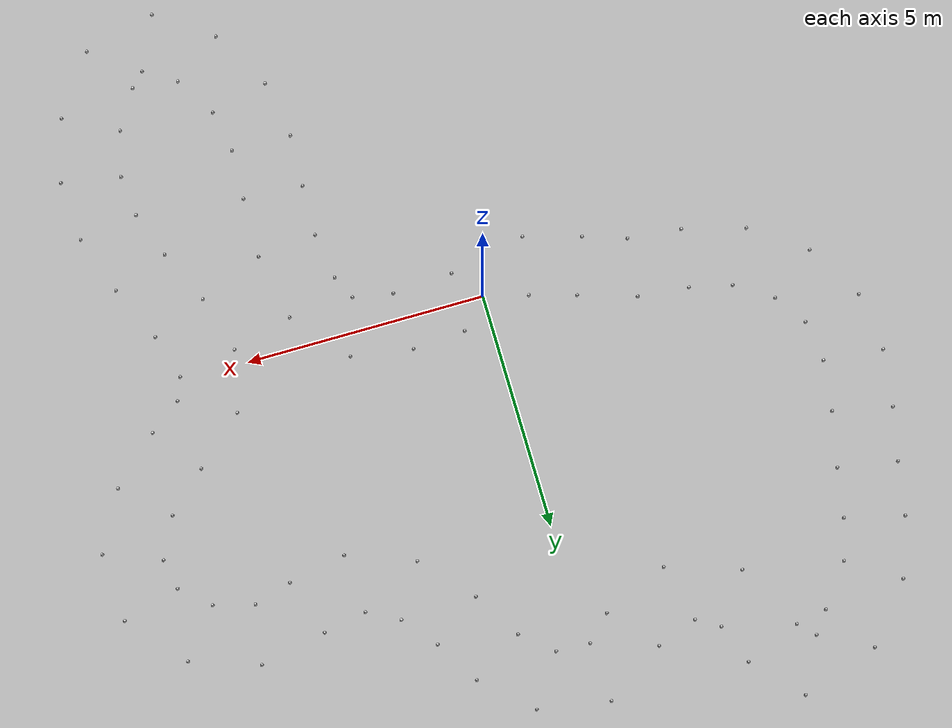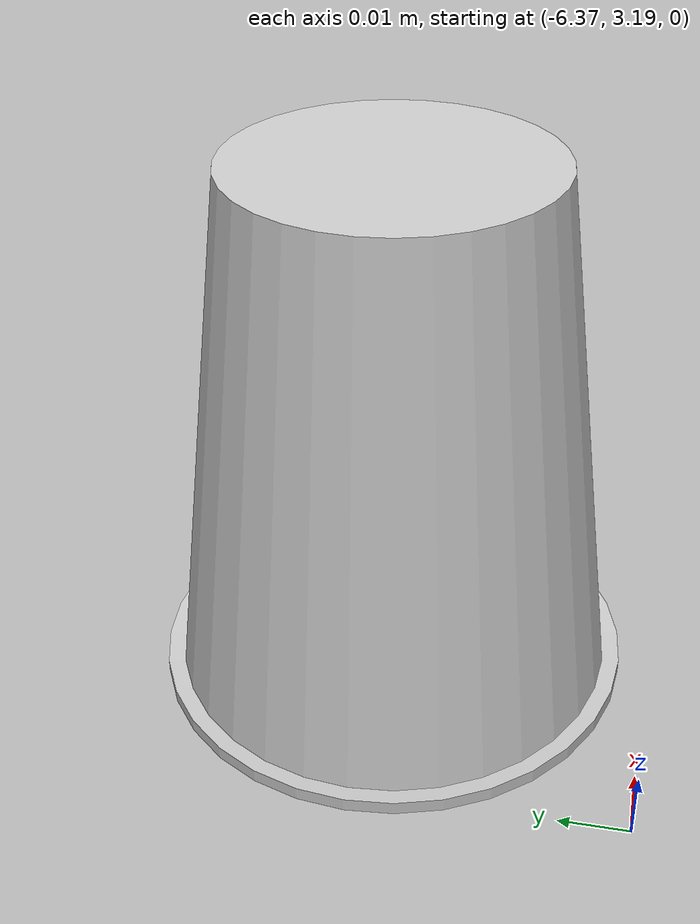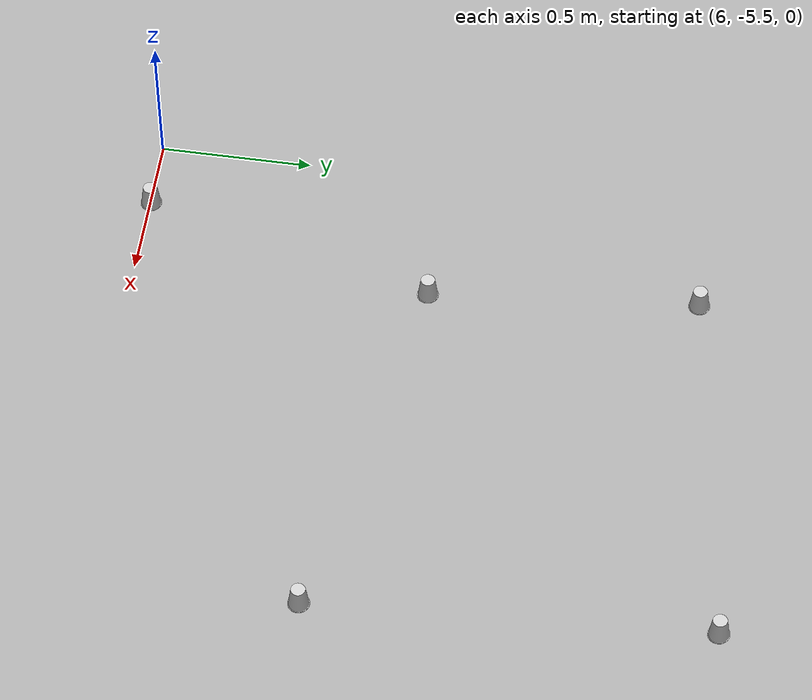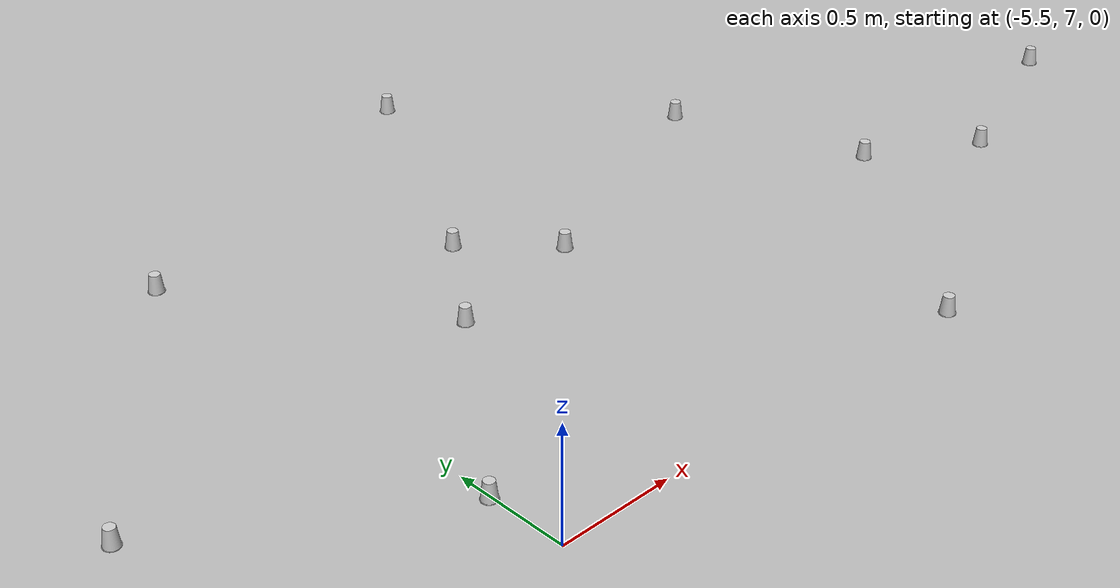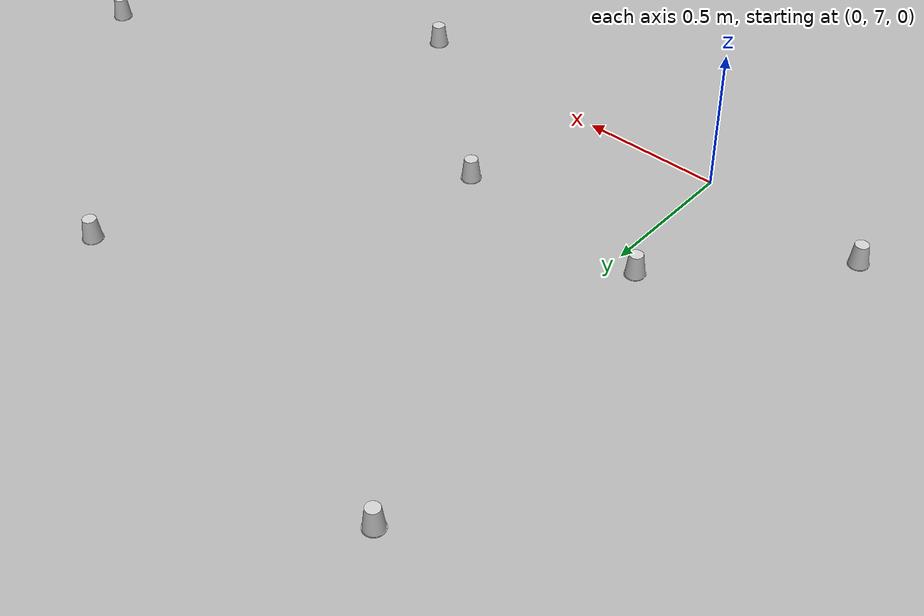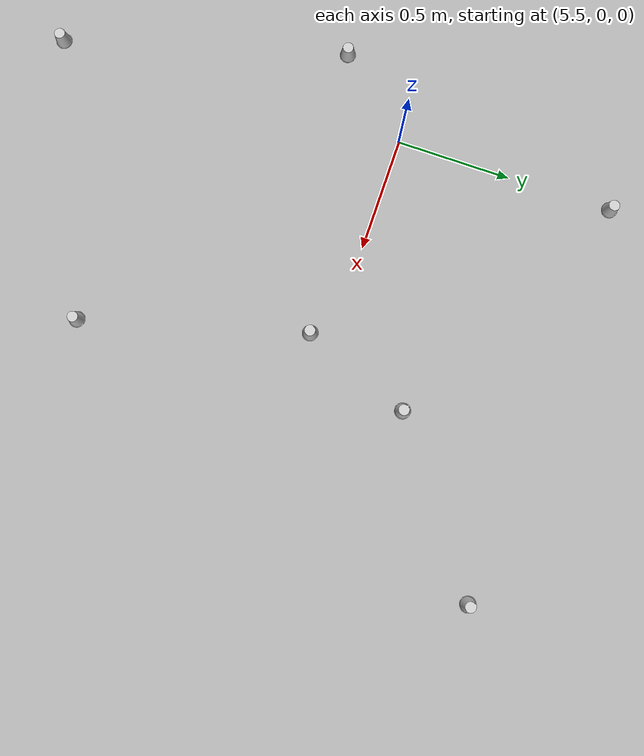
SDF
<?xml version='1.0' encoding='UTF-8'?>
<sdf version="1.4">
  <model name="some track">
    <include>
      <uri>model://cone_yellow</uri>
      <pose>0.47546932451259105 -0.6562320953575351 0 0 0 0</pose>
      <name>cone_right_0</name>
    </include>
    <include>
      <uri>model://cone_yellow</uri>
      <pose>1.7425809693762848 -0.5812231808427788 0 0 0 0</pose>
      <name>cone_right_1</name>
    </include>
    <include>
      <uri>model://cone_yellow</uri>
      <pose>2.573097788055316 -0.7332586588139313 0 0 0 0</pose>
      <name>cone_right_2</name>
    </include>
    <include>
      <uri>model://cone_yellow</uri>
      <pose>2.810277331413577 -1.2395198425914522 0 0 0 0</pose>
      <name>cone_right_3</name>
    </include>
    <include>
      <uri>model://cone_yellow</uri>
      <pose>2.9522544970300055 -2.224082742634391 0 0 0 0</pose>
      <name>cone_right_4</name>
    </include>
    <include>
      <uri>model://cone_yellow</uri>
      <pose>2.9181623258554215 -3.306340441878332 0 0 0 0</pose>
      <name>cone_right_5</name>
    </include>
    <include>
      <uri>model://cone_yellow</uri>
      <pose>2.8697493444088207 -4.41824403034643 0 0 0 0</pose>
      <name>cone_right_6</name>
    </include>
    <include>
      <uri>model://cone_yellow</uri>
      <pose>3.0717281529207394 -5.6498263763816325 0 0 0 0</pose>
      <name>cone_right_7</name>
    </include>
    <include>
      <uri>model://cone_yellow</uri>
      <pose>3.782968901965407 -6.9161935792673725 0 0 0 0</pose>
      <name>cone_right_8</name>
    </include>
    <include>
      <uri>model://cone_yellow</uri>
      <pose>4.939803433769702 -7.745260667724783 0 0 0 0</pose>
      <name>cone_right_9</name>
    </include>
    <include>
      <uri>model://cone_yellow</uri>
      <pose>6.4540149766492485 -7.343816571935378 0 0 0 0</pose>
      <name>cone_right_10</name>
    </include>
    <include>
      <uri>model://cone_yellow</uri>
      <pose>7.3334630684444395 -6.085893925879358 0 0 0 0</pose>
      <name>cone_right_11</name>
    </include>
    <include>
      <uri>model://cone_yellow</uri>
      <pose>7.704284107713281 -4.75416540795752 0 0 0 0</pose>
      <name>cone_right_12</name>
    </include>
    <include>
      <uri>model://cone_yellow</uri>
      <pose>7.6257219702040056 -3.4649518098178693 0 0 0 0</pose>
      <name>cone_right_13</name>
    </include>
    <include>
      <uri>model://cone_yellow</uri>
      <pose>7.20519613078481 -2.2201196186430625 0 0 0 0</pose>
      <name>cone_right_14</name>
    </include>
    <include>
      <uri>model://cone_yellow</uri>
      <pose>6.686262895013817 -1.0471856416397323 0 0 0 0</pose>
      <name>cone_right_15</name>
    </include>
    <include>
      <uri>model://cone_yellow</uri>
      <pose>6.419573909099897 -0.0911819390319567 0 0 0 0</pose>
      <name>cone_right_16</name>
    </include>
    <include>
      <uri>model://cone_yellow</uri>
      <pose>6.605243391624034 0.38325052655555086 0 0 0 0</pose>
      <name>cone_right_17</name>
    </include>
    <include>
      <uri>model://cone_yellow</uri>
      <pose>7.266788620003716 0.8833295691007101 0 0 0 0</pose>
      <name>cone_right_18</name>
    </include>
    <include>
      <uri>model://cone_yellow</uri>
      <pose>8.248285999465562 1.8072870962549066 0 0 0 0</pose>
      <name>cone_right_19</name>
    </include>
    <include>
      <uri>model://cone_yellow</uri>
      <pose>8.913002342074702 3.042107124074161 0 0 0 0</pose>
      <name>cone_right_20</name>
    </include>
    <include>
      <uri>model://cone_yellow</uri>
      <pose>8.831948679769845 4.488264096448706 0 0 0 0</pose>
      <name>cone_right_21</name>
    </include>
    <include>
      <uri>model://cone_yellow</uri>
      <pose>7.819907315784447 5.642764585635655 0 0 0 0</pose>
      <name>cone_right_22</name>
    </include>
    <include>
      <uri>model://cone_yellow</uri>
      <pose>6.405035016280444 6.123214657847137 0 0 0 0</pose>
      <name>cone_right_23</name>
    </include>
    <include>
      <uri>model://cone_yellow</uri>
      <pose>5.010399742955544 5.837614493796552 0 0 0 0</pose>
      <name>cone_right_24</name>
    </include>
    <include>
      <uri>model://cone_yellow</uri>
      <pose>4.108166114373763 5.66263066831719 0 0 0 0</pose>
      <name>cone_right_25</name>
    </include>
    <include>
      <uri>model://cone_yellow</uri>
      <pose>3.4510734130239173 6.01804205015614 0 0 0 0</pose>
      <name>cone_right_26</name>
    </include>
    <include>
      <uri>model://cone_yellow</uri>
      <pose>2.8805076473569486 6.709087899751246 0 0 0 0</pose>
      <name>cone_right_27</name>
    </include>
    <include>
      <uri>model://cone_yellow</uri>
      <pose>2.3246814066766284 7.62317966623981 0 0 0 0</pose>
      <name>cone_right_28</name>
    </include>
    <include>
      <uri>model://cone_yellow</uri>
      <pose>1.3303139419341758 8.536196790596623 0 0 0 0</pose>
      <name>cone_right_29</name>
    </include>
    <include>
      <uri>model://cone_yellow</uri>
      <pose>-0.16341045099972956 8.783814273237542 0 0 0 0</pose>
      <name>cone_right_30</name>
    </include>
    <include>
      <uri>model://cone_yellow</uri>
      <pose>-1.4091465383596269 7.976636862464822 0 0 0 0</pose>
      <name>cone_right_31</name>
    </include>
    <include>
      <uri>model://cone_yellow</uri>
      <pose>-2.2553711862273906 7.6620972654793045 0 0 0 0</pose>
      <name>cone_right_32</name>
    </include>
    <include>
      <uri>model://cone_yellow</uri>
      <pose>-2.726978289723062 7.947885823625147 0 0 0 0</pose>
      <name>cone_right_33</name>
    </include>
    <include>
      <uri>model://cone_yellow</uri>
      <pose>-3.0489602423147697 8.788913741197502 0 0 0 0</pose>
      <name>cone_right_34</name>
    </include>
    <include>
      <uri>model://cone_yellow</uri>
      <pose>-3.957156953423873 9.757147391609294 0 0 0 0</pose>
      <name>cone_right_35</name>
    </include>
    <include>
      <uri>model://cone_yellow</uri>
      <pose>-5.585995726172756 9.214849166193565 0 0 0 0</pose>
      <name>cone_right_36</name>
    </include>
    <include>
      <uri>model://cone_yellow</uri>
      <pose>-6.555291766409027 8.029947566060926 0 0 0 0</pose>
      <name>cone_right_37</name>
    </include>
    <include>
      <uri>model://cone_yellow</uri>
      <pose>-6.9832327366571905 6.793591515454755 0 0 0 0</pose>
      <name>cone_right_38</name>
    </include>
    <include>
      <uri>model://cone_yellow</uri>
      <pose>-7.1798684395542125 5.672869697839683 0 0 0 0</pose>
      <name>cone_right_39</name>
    </include>
    <include>
      <uri>model://cone_yellow</uri>
      <pose>-7.418271968838969 4.555647335901097 0 0 0 0</pose>
      <name>cone_right_40</name>
    </include>
    <include>
      <uri>model://cone_yellow</uri>
      <pose>-7.583086380881481 3.347804120552083 0 0 0 0</pose>
      <name>cone_right_41</name>
    </include>
    <include>
      <uri>model://cone_yellow</uri>
      <pose>-7.44680322778086 2.093592537309372 0 0 0 0</pose>
      <name>cone_right_42</name>
    </include>
    <include>
      <uri>model://cone_yellow</uri>
      <pose>-6.753185923796994 0.9153503438468928 0 0 0 0</pose>
      <name>cone_right_43</name>
    </include>
    <include>
      <uri>model://cone_yellow</uri>
      <pose>-5.634719607669065 0.10391977825027232 0 0 0 0</pose>
      <name>cone_right_44</name>
    </include>
    <include>
      <uri>model://cone_yellow</uri>
      <pose>-4.33538695644582 -0.24727473358393426 0 0 0 0</pose>
      <name>cone_right_45</name>
    </include>
    <include>
      <uri>model://cone_yellow</uri>
      <pose>-3.215129689131211 -0.362433783047132 0 0 0 0</pose>
      <name>cone_right_46</name>
    </include>
    <include>
      <uri>model://cone_yellow</uri>
      <pose>-2.3247510406992316 -0.6609231869550608 0 0 0 0</pose>
      <name>cone_right_47</name>
    </include>
    <include>
      <uri>model://cone_yellow</uri>
      <pose>-1.143170923597903 -0.9986480959902229 0 0 0 0</pose>
      <name>cone_right_48</name>
    </include>
    <include>
      <uri>model://cone_blue</uri>
      <pose>0.5541563031830451 0.5912887899937744 0 0 0 0</pose>
      <name>cone_left_0</name>
    </include>
    <include>
      <uri>model://cone_blue</uri>
      <pose>1.6625101311288382 0.6662096473537342 0 0 0 0</pose>
      <name>cone_left_1</name>
    </include>
    <include>
      <uri>model://cone_blue</uri>
      <pose>2.9512512236668167 0.45816904740043174 0 0 0 0</pose>
      <name>cone_left_2</name>
    </include>
    <include>
      <uri>model://cone_blue</uri>
      <pose>3.9281896057269123 -0.6802594855665803 0 0 0 0</pose>
      <name>cone_left_3</name>
    </include>
    <include>
      <uri>model://cone_blue</uri>
      <pose>4.1960569221587445 -2.0997624818404677 0 0 0 0</pose>
      <name>cone_left_4</name>
    </include>
    <include>
      <uri>model://cone_blue</uri>
      <pose>4.166069106721105 -3.378649959021286 0 0 0 0</pose>
      <name>cone_left_5</name>
    </include>
    <include>
      <uri>model://cone_blue</uri>
      <pose>4.119518636457262 -4.442258955970639 0 0 0 0</pose>
      <name>cone_left_6</name>
    </include>
    <include>
      <uri>model://cone_blue</uri>
      <pose>4.283359222689148 -5.342498943873792 0 0 0 0</pose>
      <name>cone_left_7</name>
    </include>
    <include>
      <uri>model://cone_blue</uri>
      <pose>4.804427163683035 -6.195691657292973 0 0 0 0</pose>
      <name>cone_left_8</name>
    </include>
    <include>
      <uri>model://cone_blue</uri>
      <pose>5.460159885812763 -6.608718032001355 0 0 0 0</pose>
      <name>cone_left_9</name>
    </include>
    <include>
      <uri>model://cone_blue</uri>
      <pose>5.745084631951179 -6.314293494794182 0 0 0 0</pose>
      <name>cone_left_10</name>
    </include>
    <include>
      <uri>model://cone_blue</uri>
      <pose>6.2315534890628825 -5.495728458516888 0 0 0 0</pose>
      <name>cone_left_11</name>
    </include>
    <include>
      <uri>model://cone_blue</uri>
      <pose>6.473711576444426 -4.534640363175467 0 0 0 0</pose>
      <name>cone_left_12</name>
    </include>
    <include>
      <uri>model://cone_blue</uri>
      <pose>6.390523812725061 -3.6567473044485355 0 0 0 0</pose>
      <name>cone_left_13</name>
    </include>
    <include>
      <uri>model://cone_blue</uri>
      <pose>6.043535567308567 -2.6816873116893367 0 0 0 0</pose>
      <name>cone_left_14</name>
    </include>
    <include>
      <uri>model://cone_blue</uri>
      <pose>5.540793623811265 -1.5475856303794329 0 0 0 0</pose>
      <name>cone_left_15</name>
    </include>
    <include>
      <uri>model://cone_blue</uri>
      <pose>5.194394653709033 -0.3390443850779131 0 0 0 0</pose>
      <name>cone_left_16</name>
    </include>
    <include>
      <uri>model://cone_blue</uri>
      <pose>5.4936095512269905 0.9548887031009259 0 0 0 0</pose>
      <name>cone_left_17</name>
    </include>
    <include>
      <uri>model://cone_blue</uri>
      <pose>6.510546237876536 1.8786171956060371 0 0 0 0</pose>
      <name>cone_left_18</name>
    </include>
    <include>
      <uri>model://cone_blue</uri>
      <pose>7.331067264110575 2.656527810960578 0 0 0 0</pose>
      <name>cone_left_19</name>
    </include>
    <include>
      <uri>model://cone_blue</uri>
      <pose>7.748798450562181 3.4972217239137016 0 0 0 0</pose>
      <name>cone_left_20</name>
    </include>
    <include>
      <uri>model://cone_blue</uri>
      <pose>7.630298493245327 4.143972317247414 0 0 0 0</pose>
      <name>cone_left_21</name>
    </include>
    <include>
      <uri>model://cone_blue</uri>
      <pose>7.036936647605576 4.668363778589841 0 0 0 0</pose>
      <name>cone_left_22</name>
    </include>
    <include>
      <uri>model://cone_blue</uri>
      <pose>6.198721818749768 4.890358273459779 0 0 0 0</pose>
      <name>cone_left_23</name>
    </include>
    <include>
      <uri>model://cone_blue</uri>
      <pose>5.409900496772529 4.653174057261367 0 0 0 0</pose>
      <name>cone_left_24</name>
    </include>
    <include>
      <uri>model://cone_blue</uri>
      <pose>4.201467177434759 4.416117567049623 0 0 0 0</pose>
      <name>cone_left_25</name>
    </include>
    <include>
      <uri>model://cone_blue</uri>
      <pose>2.809380909054835 4.945320870002654 0 0 0 0</pose>
      <name>cone_left_26</name>
    </include>
    <include>
      <uri>model://cone_blue</uri>
      <pose>1.8676486086736435 5.976546728377562 0 0 0 0</pose>
      <name>cone_left_27</name>
    </include>
    <include>
      <uri>model://cone_blue</uri>
      <pose>1.266263881577299 6.958159108239826 0 0 0 0</pose>
      <name>cone_left_28</name>
    </include>
    <include>
      <uri>model://cone_blue</uri>
      <pose>0.6241311263787648 7.504787157611633 0 0 0 0</pose>
      <name>cone_left_29</name>
    </include>
    <include>
      <uri>model://cone_blue</uri>
      <pose>-0.08178091896164706 7.536482473154162 0 0 0 0</pose>
      <name>cone_left_30</name>
    </include>
    <include>
      <uri>model://cone_blue</uri>
      <pose>-0.5826138442828914 7.0389035818235435 0 0 0 0</pose>
      <name>cone_left_31</name>
    </include>
    <include>
      <uri>model://cone_blue</uri>
      <pose>-1.957876857709158 6.448014432844114 0 0 0 0</pose>
      <name>cone_left_32</name>
    </include>
    <include>
      <uri>model://cone_blue</uri>
      <pose>-3.475591969081725 6.946847583058342 0 0 0 0</pose>
      <name>cone_left_33</name>
    </include>
    <include>
      <uri>model://cone_blue</uri>
      <pose>-4.2081134879609525 8.32108497646844 0 0 0 0</pose>
      <name>cone_left_34</name>
    </include>
    <include>
      <uri>model://cone_blue</uri>
      <pose>-4.53007163173558 8.646170897089725 0 0 0 0</pose>
      <name>cone_left_35</name>
    </include>
    <include>
      <uri>model://cone_blue</uri>
      <pose>-4.860711218757826 8.1967812002385 0 0 0 0</pose>
      <name>cone_left_36</name>
    </include>
    <include>
      <uri>model://cone_blue</uri>
      <pose>-5.509398006048864 7.345399363200325 0 0 0 0</pose>
      <name>cone_left_37</name>
    </include>
    <include>
      <uri>model://cone_blue</uri>
      <pose>-5.769910857059913 6.493008720720041 0 0 0 0</pose>
      <name>cone_left_38</name>
    </include>
    <include>
      <uri>model://cone_blue</uri>
      <pose>-5.949113418849491 5.454370089121229 0 0 0 0</pose>
      <name>cone_left_39</name>
    </include>
    <include>
      <uri>model://cone_blue</uri>
      <pose>-6.1956926269218435 4.295263479417076 0 0 0 0</pose>
      <name>cone_left_40</name>
    </include>
    <include>
      <uri>model://cone_blue</uri>
      <pose>-6.33876835807575 3.2287551469284583 0 0 0 0</pose>
      <name>cone_left_41</name>
    </include>
    <include>
      <uri>model://cone_blue</uri>
      <pose>-6.22378596716147 2.351911681445158 0 0 0 0</pose>
      <name>cone_left_42</name>
    </include>
    <include>
      <uri>model://cone_blue</uri>
      <pose>-5.77358930192585 1.6918105543011341 0 0 0 0</pose>
      <name>cone_left_43</name>
    </include>
    <include>
      <uri>model://cone_blue</uri>
      <pose>-5.013767904886724 1.188778747338749 0 0 0 0</pose>
      <name>cone_left_44</name>
    </include>
    <include>
      <uri>model://cone_blue</uri>
      <pose>-4.134337543329272 0.9864509788357638 0 0 0 0</pose>
      <name>cone_left_45</name>
    </include>
    <include>
      <uri>model://cone_blue</uri>
      <pose>-3.0665834184949388 0.8787084350246146 0 0 0 0</pose>
      <name>cone_left_46</name>
    </include>
    <include>
      <uri>model://cone_blue</uri>
      <pose>-1.8766636507582952 0.5060034135541226 0 0 0 0</pose>
      <name>cone_left_47</name>
    </include>
    <include>
      <uri>model://cone_blue</uri>
      <pose>-0.9247649536449557 0.23212354500940297 0 0 0 0</pose>
      <name>cone_left_48</name>
    </include>
  </model>
</sdf>

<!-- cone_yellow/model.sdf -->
<sdf version='1.4'>
  <model name="cone_yellow">
    <link name="link">
    <collision name="collision"><geometry><box><size> 0.05 0.05 0.01</size>
             </box></geometry></collision>
      <visual name="visual">
        <geometry>
          <mesh>
            <uri>model://cup.dae</uri>
            <scale>1 1 1</scale>
          </mesh>
        </geometry>
        <material>
            <script>
              <uri>model://cone_yellow/materials/scripts</uri>
              <uri>model://cone_yellow/materials/textures</uri>
              <name>cone_yellow/Image</name>
            </script>
        </material>
      </visual>
    </link>
  </model>
</sdf>

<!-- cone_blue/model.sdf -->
<sdf version='1.4'>
  <model name="cone_blue">
    <link name="link">
    <collision name="collision"><geometry><box><size> 0.05 0.05 0.01</size>
             </box></geometry></collision>
      <visual name="visual">
        <geometry>
          <mesh>
            <uri>model://cup.dae</uri>
            <scale>1 1 1</scale>
          </mesh>
        </geometry>
        <material>
            <script>
              <uri>model://cone_blue/materials/scripts</uri>
              <uri>model://cone_blue/materials/textures</uri>
              <name>cone_blue/Image</name>
            </script>
        </material>
      </visual>
    </link>
  </model>
</sdf>
